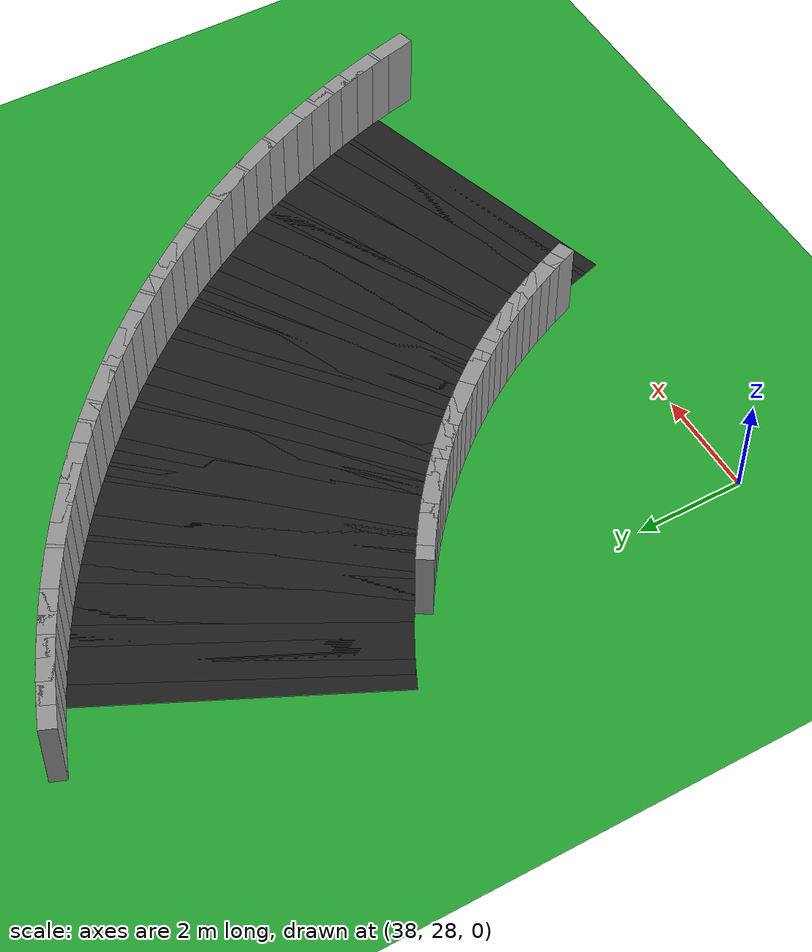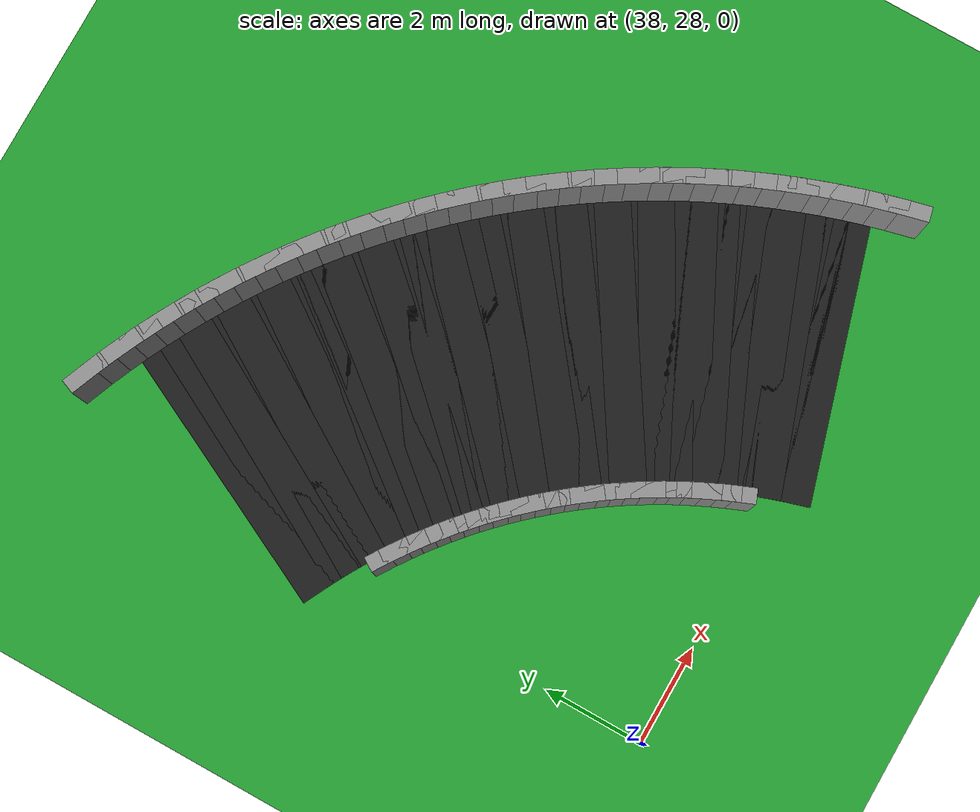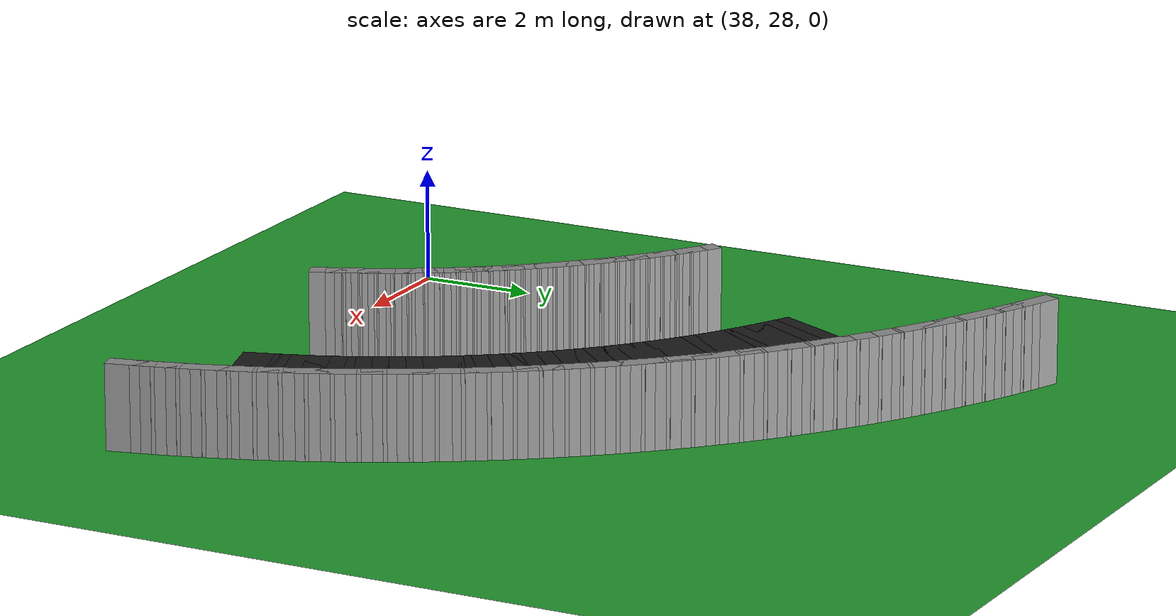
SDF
<sdf version="1.6">
 <world name="loop_speedloop">
  <include><uri>model://sun</uri></include>
  <model name="ground_plane">
   <static>true</static>
   <link name="link">
    <collision name="collision">
     <surface><friction><ode><mu>100</mu><mu2>50</mu2></ode></friction></surface>
     <geometry><plane><normal>0 0 1</normal><size>120 120</size></plane></geometry>
    </collision>
    <visual name="visual">
     <geometry><plane><normal>0 0 1</normal><size>120 120</size></plane></geometry>
     <material>
      <script><uri>file://media/materials/scripts/gazebo.material</uri><name>Gazebo/Green</name></script>
     </material>
    </visual>
   </link>
  </model>
  <model name="curbR_206">
   <static>true</static>
   <pose>48.928 28.467 0.750 0 0 1.80766</pose>
   <link name="link">
    <collision name="collision"><geometry><box><size>0.781 0.300 1.500</size></box></geometry></collision>
    <visual name="visual">
     <geometry><box><size>0.781 0.300 1.500</size></box></geometry>
     <material>
      <script><uri>file://media/materials/scripts/gazebo.material</uri><name>Gazebo/Grey</name></script>
     </material>
    </visual>
   </link>
  </model>
  <model name="curbR_207">
   <static>true</static>
   <pose>48.824 28.875 0.750 0 0 1.83260</pose>
   <link name="link">
    <collision name="collision"><geometry><box><size>0.781 0.300 1.500</size></box></geometry></collision>
    <visual name="visual">
     <geometry><box><size>0.781 0.300 1.500</size></box></geometry>
     <material>
      <script><uri>file://media/materials/scripts/gazebo.material</uri><name>Gazebo/Grey</name></script>
     </material>
    </visual>
   </link>
  </model>
  <model name="asphalt_208">
   <static>true</static>
   <pose>45.929 28.460 0.005 0 0 1.85753</pose>
   <link name="link">
    <visual name="visual">
     <geometry><box><size>0.709 5.500 0.010</size></box></geometry>
     <material>
      <script><uri>file://media/materials/scripts/gazebo.material</uri><name>Gazebo/Black</name></script>
     </material>
    </visual>
   </link>
  </model>
  <model name="curbR_208">
   <static>true</static>
   <pose>48.710 29.281 0.750 0 0 1.85753</pose>
   <link name="link">
    <collision name="collision"><geometry><box><size>0.781 0.300 1.500</size></box></geometry></collision>
    <visual name="visual">
     <geometry><box><size>0.781 0.300 1.500</size></box></geometry>
     <material>
      <script><uri>file://media/materials/scripts/gazebo.material</uri><name>Gazebo/Grey</name></script>
     </material>
    </visual>
   </link>
  </model>
  <model name="asphalt_209">
   <static>true</static>
   <pose>45.826 28.794 0.005 0 0 1.88246</pose>
   <link name="link">
    <visual name="visual">
     <geometry><box><size>0.709 5.500 0.010</size></box></geometry>
     <material>
      <script><uri>file://media/materials/scripts/gazebo.material</uri><name>Gazebo/Black</name></script>
     </material>
    </visual>
   </link>
  </model>
  <model name="curbR_209">
   <static>true</static>
   <pose>48.586 29.683 0.750 0 0 1.88246</pose>
   <link name="link">
    <collision name="collision"><geometry><box><size>0.781 0.300 1.500</size></box></geometry></collision>
    <visual name="visual">
     <geometry><box><size>0.781 0.300 1.500</size></box></geometry>
     <material>
      <script><uri>file://media/materials/scripts/gazebo.material</uri><name>Gazebo/Grey</name></script>
     </material>
    </visual>
   </link>
  </model>
  <model name="asphalt_210">
   <static>true</static>
   <pose>45.714 29.125 0.005 0 0 1.90740</pose>
   <link name="link">
    <visual name="visual">
     <geometry><box><size>0.709 5.500 0.010</size></box></geometry>
     <material>
      <script><uri>file://media/materials/scripts/gazebo.material</uri><name>Gazebo/Black</name></script>
     </material>
    </visual>
   </link>
  </model>
  <model name="curbR_210">
   <static>true</static>
   <pose>48.452 30.083 0.750 0 0 1.90740</pose>
   <link name="link">
    <collision name="collision"><geometry><box><size>0.781 0.300 1.500</size></box></geometry></collision>
    <visual name="visual">
     <geometry><box><size>0.781 0.300 1.500</size></box></geometry>
     <material>
      <script><uri>file://media/materials/scripts/gazebo.material</uri><name>Gazebo/Grey</name></script>
     </material>
    </visual>
   </link>
  </model>
  <model name="asphalt_211">
   <static>true</static>
   <pose>45.595 29.453 0.005 0 0 1.93233</pose>
   <link name="link">
    <visual name="visual">
     <geometry><box><size>0.709 5.500 0.010</size></box></geometry>
     <material>
      <script><uri>file://media/materials/scripts/gazebo.material</uri><name>Gazebo/Black</name></script>
     </material>
    </visual>
   </link>
  </model>
  <model name="curbR_211">
   <static>true</static>
   <pose>48.307 30.478 0.750 0 0 1.93233</pose>
   <link name="link">
    <collision name="collision"><geometry><box><size>0.781 0.300 1.500</size></box></geometry></collision>
    <visual name="visual">
     <geometry><box><size>0.781 0.300 1.500</size></box></geometry>
     <material>
      <script><uri>file://media/materials/scripts/gazebo.material</uri><name>Gazebo/Grey</name></script>
     </material>
    </visual>
   </link>
  </model>
  <model name="asphalt_212">
   <static>true</static>
   <pose>45.468 29.778 0.005 0 0 1.95726</pose>
   <link name="link">
    <visual name="visual">
     <geometry><box><size>0.709 5.500 0.010</size></box></geometry>
     <material>
      <script><uri>file://media/materials/scripts/gazebo.material</uri><name>Gazebo/Black</name></script>
     </material>
    </visual>
   </link>
  </model>
  <model name="curbL_212">
   <static>true</static>
   <pose>42.782 28.685 0.750 0 0 1.95726</pose>
   <link name="link">
    <collision name="collision"><geometry><box><size>0.637 0.300 1.500</size></box></geometry></collision>
    <visual name="visual">
     <geometry><box><size>0.637 0.300 1.500</size></box></geometry>
     <material>
      <script><uri>file://media/materials/scripts/gazebo.material</uri><name>Gazebo/Grey</name></script>
     </material>
    </visual>
   </link>
  </model>
  <model name="curbR_212">
   <static>true</static>
   <pose>48.153 30.871 0.750 0 0 1.95726</pose>
   <link name="link">
    <collision name="collision"><geometry><box><size>0.781 0.300 1.500</size></box></geometry></collision>
    <visual name="visual">
     <geometry><box><size>0.781 0.300 1.500</size></box></geometry>
     <material>
      <script><uri>file://media/materials/scripts/gazebo.material</uri><name>Gazebo/Grey</name></script>
     </material>
    </visual>
   </link>
  </model>
  <model name="asphalt_213">
   <static>true</static>
   <pose>45.332 30.099 0.005 0 0 1.98220</pose>
   <link name="link">
    <visual name="visual">
     <geometry><box><size>0.709 5.500 0.010</size></box></geometry>
     <material>
      <script><uri>file://media/materials/scripts/gazebo.material</uri><name>Gazebo/Black</name></script>
     </material>
    </visual>
   </link>
  </model>
  <model name="curbL_213">
   <static>true</static>
   <pose>42.674 28.940 0.750 0 0 1.98220</pose>
   <link name="link">
    <collision name="collision"><geometry><box><size>0.637 0.300 1.500</size></box></geometry></collision>
    <visual name="visual">
     <geometry><box><size>0.637 0.300 1.500</size></box></geometry>
     <material>
      <script><uri>file://media/materials/scripts/gazebo.material</uri><name>Gazebo/Grey</name></script>
     </material>
    </visual>
   </link>
  </model>
  <model name="curbR_213">
   <static>true</static>
   <pose>47.990 31.259 0.750 0 0 1.98220</pose>
   <link name="link">
    <collision name="collision"><geometry><box><size>0.781 0.300 1.500</size></box></geometry></collision>
    <visual name="visual">
     <geometry><box><size>0.781 0.300 1.500</size></box></geometry>
     <material>
      <script><uri>file://media/materials/scripts/gazebo.material</uri><name>Gazebo/Grey</name></script>
     </material>
    </visual>
   </link>
  </model>
  <model name="asphalt_214">
   <static>true</static>
   <pose>45.188 30.418 0.005 0 0 2.00713</pose>
   <link name="link">
    <visual name="visual">
     <geometry><box><size>0.709 5.500 0.010</size></box></geometry>
     <material>
      <script><uri>file://media/materials/scripts/gazebo.material</uri><name>Gazebo/Black</name></script>
     </material>
    </visual>
   </link>
  </model>
  <model name="curbL_214">
   <static>true</static>
   <pose>42.560 29.192 0.750 0 0 2.00713</pose>
   <link name="link">
    <collision name="collision"><geometry><box><size>0.637 0.300 1.500</size></box></geometry></collision>
    <visual name="visual">
     <geometry><box><size>0.637 0.300 1.500</size></box></geometry>
     <material>
      <script><uri>file://media/materials/scripts/gazebo.material</uri><name>Gazebo/Grey</name></script>
     </material>
    </visual>
   </link>
  </model>
  <model name="curbR_214">
   <static>true</static>
   <pose>47.817 31.643 0.750 0 0 2.00713</pose>
   <link name="link">
    <collision name="collision"><geometry><box><size>0.781 0.300 1.500</size></box></geometry></collision>
    <visual name="visual">
     <geometry><box><size>0.781 0.300 1.500</size></box></geometry>
     <material>
      <script><uri>file://media/materials/scripts/gazebo.material</uri><name>Gazebo/Grey</name></script>
     </material>
    </visual>
   </link>
  </model>
  <model name="asphalt_215">
   <static>true</static>
   <pose>45.037 30.732 0.005 0 0 2.03206</pose>
   <link name="link">
    <visual name="visual">
     <geometry><box><size>0.709 5.500 0.010</size></box></geometry>
     <material>
      <script><uri>file://media/materials/scripts/gazebo.material</uri><name>Gazebo/Black</name></script>
     </material>
    </visual>
   </link>
  </model>
  <model name="curbL_215">
   <static>true</static>
   <pose>42.440 29.441 0.750 0 0 2.03206</pose>
   <link name="link">
    <collision name="collision"><geometry><box><size>0.637 0.300 1.500</size></box></geometry></collision>
    <visual name="visual">
     <geometry><box><size>0.637 0.300 1.500</size></box></geometry>
     <material>
      <script><uri>file://media/materials/scripts/gazebo.material</uri><name>Gazebo/Grey</name></script>
     </material>
    </visual>
   </link>
  </model>
  <model name="curbR_215">
   <static>true</static>
   <pose>47.634 32.023 0.750 0 0 2.03206</pose>
   <link name="link">
    <collision name="collision"><geometry><box><size>0.781 0.300 1.500</size></box></geometry></collision>
    <visual name="visual">
     <geometry><box><size>0.781 0.300 1.500</size></box></geometry>
     <material>
      <script><uri>file://media/materials/scripts/gazebo.material</uri><name>Gazebo/Grey</name></script>
     </material>
    </visual>
   </link>
  </model>
  <model name="asphalt_216">
   <static>true</static>
   <pose>44.878 31.043 0.005 0 0 2.05700</pose>
   <link name="link">
    <visual name="visual">
     <geometry><box><size>0.709 5.500 0.010</size></box></geometry>
     <material>
      <script><uri>file://media/materials/scripts/gazebo.material</uri><name>Gazebo/Black</name></script>
     </material>
    </visual>
   </link>
  </model>
  <model name="curbL_216">
   <static>true</static>
   <pose>42.314 29.688 0.750 0 0 2.05700</pose>
   <link name="link">
    <collision name="collision"><geometry><box><size>0.637 0.300 1.500</size></box></geometry></collision>
    <visual name="visual">
     <geometry><box><size>0.637 0.300 1.500</size></box></geometry>
     <material>
      <script><uri>file://media/materials/scripts/gazebo.material</uri><name>Gazebo/Grey</name></script>
     </material>
    </visual>
   </link>
  </model>
  <model name="curbR_216">
   <static>true</static>
   <pose>47.442 32.398 0.750 0 0 2.05700</pose>
   <link name="link">
    <collision name="collision"><geometry><box><size>0.781 0.300 1.500</size></box></geometry></collision>
    <visual name="visual">
     <geometry><box><size>0.781 0.300 1.500</size></box></geometry>
     <material>
      <script><uri>file://media/materials/scripts/gazebo.material</uri><name>Gazebo/Grey</name></script>
     </material>
    </visual>
   </link>
  </model>
  <model name="asphalt_217">
   <static>true</static>
   <pose>44.711 31.349 0.005 0 0 2.08193</pose>
   <link name="link">
    <visual name="visual">
     <geometry><box><size>0.709 5.500 0.010</size></box></geometry>
     <material>
      <script><uri>file://media/materials/scripts/gazebo.material</uri><name>Gazebo/Black</name></script>
     </material>
    </visual>
   </link>
  </model>
  <model name="curbL_217">
   <static>true</static>
   <pose>42.182 29.931 0.750 0 0 2.08193</pose>
   <link name="link">
    <collision name="collision"><geometry><box><size>0.637 0.300 1.500</size></box></geometry></collision>
    <visual name="visual">
     <geometry><box><size>0.637 0.300 1.500</size></box></geometry>
     <material>
      <script><uri>file://media/materials/scripts/gazebo.material</uri><name>Gazebo/Grey</name></script>
     </material>
    </visual>
   </link>
  </model>
  <model name="curbR_217">
   <static>true</static>
   <pose>47.240 32.768 0.750 0 0 2.08193</pose>
   <link name="link">
    <collision name="collision"><geometry><box><size>0.781 0.300 1.500</size></box></geometry></collision>
    <visual name="visual">
     <geometry><box><size>0.781 0.300 1.500</size></box></geometry>
     <material>
      <script><uri>file://media/materials/scripts/gazebo.material</uri><name>Gazebo/Grey</name></script>
     </material>
    </visual>
   </link>
  </model>
  <model name="asphalt_218">
   <static>true</static>
   <pose>44.536 31.651 0.005 0 0 2.10686</pose>
   <link name="link">
    <visual name="visual">
     <geometry><box><size>0.709 5.500 0.010</size></box></geometry>
     <material>
      <script><uri>file://media/materials/scripts/gazebo.material</uri><name>Gazebo/Black</name></script>
     </material>
    </visual>
   </link>
  </model>
  <model name="curbL_218">
   <static>true</static>
   <pose>42.043 30.170 0.750 0 0 2.10686</pose>
   <link name="link">
    <collision name="collision"><geometry><box><size>0.637 0.300 1.500</size></box></geometry></collision>
    <visual name="visual">
     <geometry><box><size>0.637 0.300 1.500</size></box></geometry>
     <material>
      <script><uri>file://media/materials/scripts/gazebo.material</uri><name>Gazebo/Grey</name></script>
     </material>
    </visual>
   </link>
  </model>
  <model name="curbR_218">
   <static>true</static>
   <pose>47.029 33.132 0.750 0 0 2.10686</pose>
   <link name="link">
    <collision name="collision"><geometry><box><size>0.781 0.300 1.500</size></box></geometry></collision>
    <visual name="visual">
     <geometry><box><size>0.781 0.300 1.500</size></box></geometry>
     <material>
      <script><uri>file://media/materials/scripts/gazebo.material</uri><name>Gazebo/Grey</name></script>
     </material>
    </visual>
   </link>
  </model>
  <model name="asphalt_219">
   <static>true</static>
   <pose>44.354 31.949 0.005 0 0 2.13180</pose>
   <link name="link">
    <visual name="visual">
     <geometry><box><size>0.709 5.500 0.010</size></box></geometry>
     <material>
      <script><uri>file://media/materials/scripts/gazebo.material</uri><name>Gazebo/Black</name></script>
     </material>
    </visual>
   </link>
  </model>
  <model name="curbL_219">
   <static>true</static>
   <pose>41.899 30.406 0.750 0 0 2.13180</pose>
   <link name="link">
    <collision name="collision"><geometry><box><size>0.637 0.300 1.500</size></box></geometry></collision>
    <visual name="visual">
     <geometry><box><size>0.637 0.300 1.500</size></box></geometry>
     <material>
      <script><uri>file://media/materials/scripts/gazebo.material</uri><name>Gazebo/Grey</name></script>
     </material>
    </visual>
   </link>
  </model>
  <model name="curbR_219">
   <static>true</static>
   <pose>46.810 33.492 0.750 0 0 2.13180</pose>
   <link name="link">
    <collision name="collision"><geometry><box><size>0.781 0.300 1.500</size></box></geometry></collision>
    <visual name="visual">
     <geometry><box><size>0.781 0.300 1.500</size></box></geometry>
     <material>
      <script><uri>file://media/materials/scripts/gazebo.material</uri><name>Gazebo/Grey</name></script>
     </material>
    </visual>
   </link>
  </model>
  <model name="asphalt_220">
   <static>true</static>
   <pose>44.165 32.242 0.005 0 0 2.15673</pose>
   <link name="link">
    <visual name="visual">
     <geometry><box><size>0.709 5.500 0.010</size></box></geometry>
     <material>
      <script><uri>file://media/materials/scripts/gazebo.material</uri><name>Gazebo/Black</name></script>
     </material>
    </visual>
   </link>
  </model>
  <model name="curbL_220">
   <static>true</static>
   <pose>41.749 30.639 0.750 0 0 2.15673</pose>
   <link name="link">
    <collision name="collision"><geometry><box><size>0.637 0.300 1.500</size></box></geometry></collision>
    <visual name="visual">
     <geometry><box><size>0.637 0.300 1.500</size></box></geometry>
     <material>
      <script><uri>file://media/materials/scripts/gazebo.material</uri><name>Gazebo/Grey</name></script>
     </material>
    </visual>
   </link>
  </model>
  <model name="curbR_220">
   <static>true</static>
   <pose>46.581 33.846 0.750 0 0 2.15673</pose>
   <link name="link">
    <collision name="collision"><geometry><box><size>0.781 0.300 1.500</size></box></geometry></collision>
    <visual name="visual">
     <geometry><box><size>0.781 0.300 1.500</size></box></geometry>
     <material>
      <script><uri>file://media/materials/scripts/gazebo.material</uri><name>Gazebo/Grey</name></script>
     </material>
    </visual>
   </link>
  </model>
  <model name="asphalt_221">
   <static>true</static>
   <pose>43.968 32.531 0.005 0 0 2.18166</pose>
   <link name="link">
    <visual name="visual">
     <geometry><box><size>0.709 5.500 0.010</size></box></geometry>
     <material>
      <script><uri>file://media/materials/scripts/gazebo.material</uri><name>Gazebo/Black</name></script>
     </material>
    </visual>
   </link>
  </model>
  <model name="curbL_221">
   <static>true</static>
   <pose>41.593 30.868 0.750 0 0 2.18166</pose>
   <link name="link">
    <collision name="collision"><geometry><box><size>0.637 0.300 1.500</size></box></geometry></collision>
    <visual name="visual">
     <geometry><box><size>0.637 0.300 1.500</size></box></geometry>
     <material>
      <script><uri>file://media/materials/scripts/gazebo.material</uri><name>Gazebo/Grey</name></script>
     </material>
    </visual>
   </link>
  </model>
  <model name="curbR_221">
   <static>true</static>
   <pose>46.344 34.194 0.750 0 0 2.18166</pose>
   <link name="link">
    <collision name="collision"><geometry><box><size>0.781 0.300 1.500</size></box></geometry></collision>
    <visual name="visual">
     <geometry><box><size>0.781 0.300 1.500</size></box></geometry>
     <material>
      <script><uri>file://media/materials/scripts/gazebo.material</uri><name>Gazebo/Grey</name></script>
     </material>
    </visual>
   </link>
  </model>
  <model name="asphalt_222">
   <static>true</static>
   <pose>43.765 32.814 0.005 0 0 2.20659</pose>
   <link name="link">
    <visual name="visual">
     <geometry><box><size>0.709 5.500 0.010</size></box></geometry>
     <material>
      <script><uri>file://media/materials/scripts/gazebo.material</uri><name>Gazebo/Black</name></script>
     </material>
    </visual>
   </link>
  </model>
  <model name="curbL_222">
   <static>true</static>
   <pose>41.431 31.092 0.750 0 0 2.20659</pose>
   <link name="link">
    <collision name="collision"><geometry><box><size>0.637 0.300 1.500</size></box></geometry></collision>
    <visual name="visual">
     <geometry><box><size>0.637 0.300 1.500</size></box></geometry>
     <material>
      <script><uri>file://media/materials/scripts/gazebo.material</uri><name>Gazebo/Grey</name></script>
     </material>
    </visual>
   </link>
  </model>
  <model name="curbR_222">
   <static>true</static>
   <pose>46.098 34.536 0.750 0 0 2.20659</pose>
   <link name="link">
    <collision name="collision"><geometry><box><size>0.781 0.300 1.500</size></box></geometry></collision>
    <visual name="visual">
     <geometry><box><size>0.781 0.300 1.500</size></box></geometry>
     <material>
      <script><uri>file://media/materials/scripts/gazebo.material</uri><name>Gazebo/Grey</name></script>
     </material>
    </visual>
   </link>
  </model>
  <model name="asphalt_223">
   <static>true</static>
   <pose>43.554 33.092 0.005 0 0 2.23153</pose>
   <link name="link">
    <visual name="visual">
     <geometry><box><size>0.709 5.500 0.010</size></box></geometry>
     <material>
      <script><uri>file://media/materials/scripts/gazebo.material</uri><name>Gazebo/Black</name></script>
     </material>
    </visual>
   </link>
  </model>
  <model name="curbL_223">
   <static>true</static>
   <pose>41.264 31.313 0.750 0 0 2.23153</pose>
   <link name="link">
    <collision name="collision"><geometry><box><size>0.637 0.300 1.500</size></box></geometry></collision>
    <visual name="visual">
     <geometry><box><size>0.637 0.300 1.500</size></box></geometry>
     <material>
      <script><uri>file://media/materials/scripts/gazebo.material</uri><name>Gazebo/Grey</name></script>
     </material>
    </visual>
   </link>
  </model>
  <model name="curbR_223">
   <static>true</static>
   <pose>45.843 34.872 0.750 0 0 2.23153</pose>
   <link name="link">
    <collision name="collision"><geometry><box><size>0.781 0.300 1.500</size></box></geometry></collision>
    <visual name="visual">
     <geometry><box><size>0.781 0.300 1.500</size></box></geometry>
     <material>
      <script><uri>file://media/materials/scripts/gazebo.material</uri><name>Gazebo/Grey</name></script>
     </material>
    </visual>
   </link>
  </model>
  <model name="asphalt_224">
   <static>true</static>
   <pose>43.336 33.365 0.005 0 0 2.25646</pose>
   <link name="link">
    <visual name="visual">
     <geometry><box><size>0.709 5.500 0.010</size></box></geometry>
     <material>
      <script><uri>file://media/materials/scripts/gazebo.material</uri><name>Gazebo/Black</name></script>
     </material>
    </visual>
   </link>
  </model>
  <model name="curbL_224">
   <static>true</static>
   <pose>41.092 31.529 0.750 0 0 2.25646</pose>
   <link name="link">
    <collision name="collision"><geometry><box><size>0.637 0.300 1.500</size></box></geometry></collision>
    <visual name="visual">
     <geometry><box><size>0.637 0.300 1.500</size></box></geometry>
     <material>
      <script><uri>file://media/materials/scripts/gazebo.material</uri><name>Gazebo/Grey</name></script>
     </material>
    </visual>
   </link>
  </model>
  <model name="curbR_224">
   <static>true</static>
   <pose>45.581 35.201 0.750 0 0 2.25646</pose>
   <link name="link">
    <collision name="collision"><geometry><box><size>0.781 0.300 1.500</size></box></geometry></collision>
    <visual name="visual">
     <geometry><box><size>0.781 0.300 1.500</size></box></geometry>
     <material>
      <script><uri>file://media/materials/scripts/gazebo.material</uri><name>Gazebo/Grey</name></script>
     </material>
    </visual>
   </link>
  </model>
  <model name="asphalt_225">
   <static>true</static>
   <pose>43.112 33.633 0.005 0 0 2.28139</pose>
   <link name="link">
    <visual name="visual">
     <geometry><box><size>0.709 5.500 0.010</size></box></geometry>
     <material>
      <script><uri>file://media/materials/scripts/gazebo.material</uri><name>Gazebo/Black</name></script>
     </material>
    </visual>
   </link>
  </model>
  <model name="curbL_225">
   <static>true</static>
   <pose>40.914 31.741 0.750 0 0 2.28139</pose>
   <link name="link">
    <collision name="collision"><geometry><box><size>0.637 0.300 1.500</size></box></geometry></collision>
    <visual name="visual">
     <geometry><box><size>0.637 0.300 1.500</size></box></geometry>
     <material>
      <script><uri>file://media/materials/scripts/gazebo.material</uri><name>Gazebo/Grey</name></script>
     </material>
    </visual>
   </link>
  </model>
  <model name="curbR_225">
   <static>true</static>
   <pose>45.310 35.524 0.750 0 0 2.28139</pose>
   <link name="link">
    <collision name="collision"><geometry><box><size>0.781 0.300 1.500</size></box></geometry></collision>
    <visual name="visual">
     <geometry><box><size>0.781 0.300 1.500</size></box></geometry>
     <material>
      <script><uri>file://media/materials/scripts/gazebo.material</uri><name>Gazebo/Grey</name></script>
     </material>
    </visual>
   </link>
  </model>
  <model name="asphalt_226">
   <static>true</static>
   <pose>42.881 33.894 0.005 0 0 2.30633</pose>
   <link name="link">
    <visual name="visual">
     <geometry><box><size>0.709 5.500 0.010</size></box></geometry>
     <material>
      <script><uri>file://media/materials/scripts/gazebo.material</uri><name>Gazebo/Black</name></script>
     </material>
    </visual>
   </link>
  </model>
  <model name="curbL_226">
   <static>true</static>
   <pose>40.731 31.949 0.750 0 0 2.30633</pose>
   <link name="link">
    <collision name="collision"><geometry><box><size>0.637 0.300 1.500</size></box></geometry></collision>
    <visual name="visual">
     <geometry><box><size>0.637 0.300 1.500</size></box></geometry>
     <material>
      <script><uri>file://media/materials/scripts/gazebo.material</uri><name>Gazebo/Grey</name></script>
     </material>
    </visual>
   </link>
  </model>
  <model name="curbR_226">
   <static>true</static>
   <pose>45.031 35.840 0.750 0 0 2.30633</pose>
   <link name="link">
    <collision name="collision"><geometry><box><size>0.781 0.300 1.500</size></box></geometry></collision>
    <visual name="visual">
     <geometry><box><size>0.781 0.300 1.500</size></box></geometry>
     <material>
      <script><uri>file://media/materials/scripts/gazebo.material</uri><name>Gazebo/Grey</name></script>
     </material>
    </visual>
   </link>
  </model>
  <model name="asphalt_227">
   <static>true</static>
   <pose>42.643 34.150 0.005 0 0 2.33126</pose>
   <link name="link">
    <visual name="visual">
     <geometry><box><size>0.709 5.500 0.010</size></box></geometry>
     <material>
      <script><uri>file://media/materials/scripts/gazebo.material</uri><name>Gazebo/Black</name></script>
     </material>
    </visual>
   </link>
  </model>
  <model name="curbL_227">
   <static>true</static>
   <pose>40.543 32.152 0.750 0 0 2.33126</pose>
   <link name="link">
    <collision name="collision"><geometry><box><size>0.637 0.300 1.500</size></box></geometry></collision>
    <visual name="visual">
     <geometry><box><size>0.637 0.300 1.500</size></box></geometry>
     <material>
      <script><uri>file://media/materials/scripts/gazebo.material</uri><name>Gazebo/Grey</name></script>
     </material>
    </visual>
   </link>
  </model>
  <model name="curbR_227">
   <static>true</static>
   <pose>44.744 36.149 0.750 0 0 2.33126</pose>
   <link name="link">
    <collision name="collision"><geometry><box><size>0.781 0.300 1.500</size></box></geometry></collision>
    <visual name="visual">
     <geometry><box><size>0.781 0.300 1.500</size></box></geometry>
     <material>
      <script><uri>file://media/materials/scripts/gazebo.material</uri><name>Gazebo/Grey</name></script>
     </material>
    </visual>
   </link>
  </model>
  <model name="asphalt_228">
   <static>true</static>
   <pose>42.400 34.400 0.005 0 0 2.35619</pose>
   <link name="link">
    <visual name="visual">
     <geometry><box><size>0.709 5.500 0.010</size></box></geometry>
     <material>
      <script><uri>file://media/materials/scripts/gazebo.material</uri><name>Gazebo/Black</name></script>
     </material>
    </visual>
   </link>
  </model>
  <model name="curbL_228">
   <static>true</static>
   <pose>40.349 32.350 0.750 0 0 2.35619</pose>
   <link name="link">
    <collision name="collision"><geometry><box><size>0.637 0.300 1.500</size></box></geometry></collision>
    <visual name="visual">
     <geometry><box><size>0.637 0.300 1.500</size></box></geometry>
     <material>
      <script><uri>file://media/materials/scripts/gazebo.material</uri><name>Gazebo/Grey</name></script>
     </material>
    </visual>
   </link>
  </model>
  <model name="curbR_228">
   <static>true</static>
   <pose>44.450 36.451 0.750 0 0 2.35619</pose>
   <link name="link">
    <collision name="collision"><geometry><box><size>0.781 0.300 1.500</size></box></geometry></collision>
    <visual name="visual">
     <geometry><box><size>0.781 0.300 1.500</size></box></geometry>
     <material>
      <script><uri>file://media/materials/scripts/gazebo.material</uri><name>Gazebo/Grey</name></script>
     </material>
    </visual>
   </link>
  </model>
  <model name="asphalt_229">
   <static>true</static>
   <pose>42.150 34.644 0.005 0 0 2.38113</pose>
   <link name="link">
    <visual name="visual">
     <geometry><box><size>0.709 5.500 0.010</size></box></geometry>
     <material>
      <script><uri>file://media/materials/scripts/gazebo.material</uri><name>Gazebo/Black</name></script>
     </material>
    </visual>
   </link>
  </model>
  <model name="curbL_229">
   <static>true</static>
   <pose>40.151 32.543 0.750 0 0 2.38113</pose>
   <link name="link">
    <collision name="collision"><geometry><box><size>0.637 0.300 1.500</size></box></geometry></collision>
    <visual name="visual">
     <geometry><box><size>0.637 0.300 1.500</size></box></geometry>
     <material>
      <script><uri>file://media/materials/scripts/gazebo.material</uri><name>Gazebo/Grey</name></script>
     </material>
    </visual>
   </link>
  </model>
  <model name="curbR_229">
   <static>true</static>
   <pose>44.149 36.745 0.750 0 0 2.38113</pose>
   <link name="link">
    <collision name="collision"><geometry><box><size>0.781 0.300 1.500</size></box></geometry></collision>
    <visual name="visual">
     <geometry><box><size>0.781 0.300 1.500</size></box></geometry>
     <material>
      <script><uri>file://media/materials/scripts/gazebo.material</uri><name>Gazebo/Grey</name></script>
     </material>
    </visual>
   </link>
  </model>
  <model name="asphalt_230">
   <static>true</static>
   <pose>41.894 34.881 0.005 0 0 2.40606</pose>
   <link name="link">
    <visual name="visual">
     <geometry><box><size>0.709 5.500 0.010</size></box></geometry>
     <material>
      <script><uri>file://media/materials/scripts/gazebo.material</uri><name>Gazebo/Black</name></script>
     </material>
    </visual>
   </link>
  </model>
  <model name="curbL_230">
   <static>true</static>
   <pose>39.948 32.731 0.750 0 0 2.40606</pose>
   <link name="link">
    <collision name="collision"><geometry><box><size>0.637 0.300 1.500</size></box></geometry></collision>
    <visual name="visual">
     <geometry><box><size>0.637 0.300 1.500</size></box></geometry>
     <material>
      <script><uri>file://media/materials/scripts/gazebo.material</uri><name>Gazebo/Grey</name></script>
     </material>
    </visual>
   </link>
  </model>
  <model name="curbR_230">
   <static>true</static>
   <pose>43.840 37.031 0.750 0 0 2.40606</pose>
   <link name="link">
    <collision name="collision"><geometry><box><size>0.781 0.300 1.500</size></box></geometry></collision>
    <visual name="visual">
     <geometry><box><size>0.781 0.300 1.500</size></box></geometry>
     <material>
      <script><uri>file://media/materials/scripts/gazebo.material</uri><name>Gazebo/Grey</name></script>
     </material>
    </visual>
   </link>
  </model>
  <model name="asphalt_231">
   <static>true</static>
   <pose>41.632 35.112 0.005 0 0 2.43099</pose>
   <link name="link">
    <visual name="visual">
     <geometry><box><size>0.709 5.500 0.010</size></box></geometry>
     <material>
      <script><uri>file://media/materials/scripts/gazebo.material</uri><name>Gazebo/Black</name></script>
     </material>
    </visual>
   </link>
  </model>
  <model name="curbL_231">
   <static>true</static>
   <pose>39.741 32.914 0.750 0 0 2.43099</pose>
   <link name="link">
    <collision name="collision"><geometry><box><size>0.637 0.300 1.500</size></box></geometry></collision>
    <visual name="visual">
     <geometry><box><size>0.637 0.300 1.500</size></box></geometry>
     <material>
      <script><uri>file://media/materials/scripts/gazebo.material</uri><name>Gazebo/Grey</name></script>
     </material>
    </visual>
   </link>
  </model>
  <model name="curbR_231">
   <static>true</static>
   <pose>43.524 37.310 0.750 0 0 2.43099</pose>
   <link name="link">
    <collision name="collision"><geometry><box><size>0.781 0.300 1.500</size></box></geometry></collision>
    <visual name="visual">
     <geometry><box><size>0.781 0.300 1.500</size></box></geometry>
     <material>
      <script><uri>file://media/materials/scripts/gazebo.material</uri><name>Gazebo/Grey</name></script>
     </material>
    </visual>
   </link>
  </model>
  <model name="asphalt_232">
   <static>true</static>
   <pose>41.365 35.337 0.005 0 0 2.45593</pose>
   <link name="link">
    <visual name="visual">
     <geometry><box><size>0.709 5.500 0.010</size></box></geometry>
     <material>
      <script><uri>file://media/materials/scripts/gazebo.material</uri><name>Gazebo/Black</name></script>
     </material>
    </visual>
   </link>
  </model>
  <model name="curbL_232">
   <static>true</static>
   <pose>39.529 33.092 0.750 0 0 2.45593</pose>
   <link name="link">
    <collision name="collision"><geometry><box><size>0.637 0.300 1.500</size></box></geometry></collision>
    <visual name="visual">
     <geometry><box><size>0.637 0.300 1.500</size></box></geometry>
     <material>
      <script><uri>file://media/materials/scripts/gazebo.material</uri><name>Gazebo/Grey</name></script>
     </material>
    </visual>
   </link>
  </model>
  <model name="curbR_232">
   <static>true</static>
   <pose>43.201 37.581 0.750 0 0 2.45593</pose>
   <link name="link">
    <collision name="collision"><geometry><box><size>0.781 0.300 1.500</size></box></geometry></collision>
    <visual name="visual">
     <geometry><box><size>0.781 0.300 1.500</size></box></geometry>
     <material>
      <script><uri>file://media/materials/scripts/gazebo.material</uri><name>Gazebo/Grey</name></script>
     </material>
    </visual>
   </link>
  </model>
  <model name="asphalt_233">
   <static>true</static>
   <pose>41.092 35.554 0.005 0 0 2.48086</pose>
   <link name="link">
    <visual name="visual">
     <geometry><box><size>0.709 5.500 0.010</size></box></geometry>
     <material>
      <script><uri>file://media/materials/scripts/gazebo.material</uri><name>Gazebo/Black</name></script>
     </material>
    </visual>
   </link>
  </model>
  <model name="curbL_233">
   <static>true</static>
   <pose>39.312 33.265 0.750 0 0 2.48086</pose>
   <link name="link">
    <collision name="collision"><geometry><box><size>0.637 0.300 1.500</size></box></geometry></collision>
    <visual name="visual">
     <geometry><box><size>0.637 0.300 1.500</size></box></geometry>
     <material>
      <script><uri>file://media/materials/scripts/gazebo.material</uri><name>Gazebo/Grey</name></script>
     </material>
    </visual>
   </link>
  </model>
  <model name="curbR_233">
   <static>true</static>
   <pose>42.872 37.844 0.750 0 0 2.48086</pose>
   <link name="link">
    <collision name="collision"><geometry><box><size>0.781 0.300 1.500</size></box></geometry></collision>
    <visual name="visual">
     <geometry><box><size>0.781 0.300 1.500</size></box></geometry>
     <material>
      <script><uri>file://media/materials/scripts/gazebo.material</uri><name>Gazebo/Grey</name></script>
     </material>
    </visual>
   </link>
  </model>
  <model name="asphalt_234">
   <static>true</static>
   <pose>40.814 35.765 0.005 0 0 2.50579</pose>
   <link name="link">
    <visual name="visual">
     <geometry><box><size>0.709 5.500 0.010</size></box></geometry>
     <material>
      <script><uri>file://media/materials/scripts/gazebo.material</uri><name>Gazebo/Black</name></script>
     </material>
    </visual>
   </link>
  </model>
  <model name="curbL_234">
   <static>true</static>
   <pose>39.092 33.432 0.750 0 0 2.50579</pose>
   <link name="link">
    <collision name="collision"><geometry><box><size>0.637 0.300 1.500</size></box></geometry></collision>
    <visual name="visual">
     <geometry><box><size>0.637 0.300 1.500</size></box></geometry>
     <material>
      <script><uri>file://media/materials/scripts/gazebo.material</uri><name>Gazebo/Grey</name></script>
     </material>
    </visual>
   </link>
  </model>
  <model name="curbR_234">
   <static>true</static>
   <pose>42.536 38.098 0.750 0 0 2.50579</pose>
   <link name="link">
    <collision name="collision"><geometry><box><size>0.781 0.300 1.500</size></box></geometry></collision>
    <visual name="visual">
     <geometry><box><size>0.781 0.300 1.500</size></box></geometry>
     <material>
      <script><uri>file://media/materials/scripts/gazebo.material</uri><name>Gazebo/Grey</name></script>
     </material>
    </visual>
   </link>
  </model>
  <model name="asphalt_235">
   <static>true</static>
   <pose>40.530 35.969 0.005 0 0 2.53073</pose>
   <link name="link">
    <visual name="visual">
     <geometry><box><size>0.709 5.500 0.010</size></box></geometry>
     <material>
      <script><uri>file://media/materials/scripts/gazebo.material</uri><name>Gazebo/Black</name></script>
     </material>
    </visual>
   </link>
  </model>
  <model name="curbL_235">
   <static>true</static>
   <pose>38.867 33.593 0.750 0 0 2.53073</pose>
   <link name="link">
    <collision name="collision"><geometry><box><size>0.637 0.300 1.500</size></box></geometry></collision>
    <visual name="visual">
     <geometry><box><size>0.637 0.300 1.500</size></box></geometry>
     <material>
      <script><uri>file://media/materials/scripts/gazebo.material</uri><name>Gazebo/Grey</name></script>
     </material>
    </visual>
   </link>
  </model>
  <model name="curbR_235">
   <static>true</static>
   <pose>42.194 38.344 0.750 0 0 2.53073</pose>
   <link name="link">
    <collision name="collision"><geometry><box><size>0.781 0.300 1.500</size></box></geometry></collision>
    <visual name="visual">
     <geometry><box><size>0.781 0.300 1.500</size></box></geometry>
     <material>
      <script><uri>file://media/materials/scripts/gazebo.material</uri><name>Gazebo/Grey</name></script>
     </material>
    </visual>
   </link>
  </model>
  <model name="asphalt_236">
   <static>true</static>
   <pose>40.242 36.165 0.005 0 0 2.55566</pose>
   <link name="link">
    <visual name="visual">
     <geometry><box><size>0.709 5.500 0.010</size></box></geometry>
     <material>
      <script><uri>file://media/materials/scripts/gazebo.material</uri><name>Gazebo/Black</name></script>
     </material>
    </visual>
   </link>
  </model>
  <model name="curbL_236">
   <static>true</static>
   <pose>38.639 33.749 0.750 0 0 2.55566</pose>
   <link name="link">
    <collision name="collision"><geometry><box><size>0.637 0.300 1.500</size></box></geometry></collision>
    <visual name="visual">
     <geometry><box><size>0.637 0.300 1.500</size></box></geometry>
     <material>
      <script><uri>file://media/materials/scripts/gazebo.material</uri><name>Gazebo/Grey</name></script>
     </material>
    </visual>
   </link>
  </model>
  <model name="curbR_236">
   <static>true</static>
   <pose>41.846 38.581 0.750 0 0 2.55566</pose>
   <link name="link">
    <collision name="collision"><geometry><box><size>0.781 0.300 1.500</size></box></geometry></collision>
    <visual name="visual">
     <geometry><box><size>0.781 0.300 1.500</size></box></geometry>
     <material>
      <script><uri>file://media/materials/scripts/gazebo.material</uri><name>Gazebo/Grey</name></script>
     </material>
    </visual>
   </link>
  </model>
  <model name="asphalt_237">
   <static>true</static>
   <pose>39.949 36.355 0.005 0 0 2.58059</pose>
   <link name="link">
    <visual name="visual">
     <geometry><box><size>0.709 5.500 0.010</size></box></geometry>
     <material>
      <script><uri>file://media/materials/scripts/gazebo.material</uri><name>Gazebo/Black</name></script>
     </material>
    </visual>
   </link>
  </model>
  <model name="curbR_237">
   <static>true</static>
   <pose>41.492 38.810 0.750 0 0 2.58059</pose>
   <link name="link">
    <collision name="collision"><geometry><box><size>0.781 0.300 1.500</size></box></geometry></collision>
    <visual name="visual">
     <geometry><box><size>0.781 0.300 1.500</size></box></geometry>
     <material>
      <script><uri>file://media/materials/scripts/gazebo.material</uri><name>Gazebo/Grey</name></script>
     </material>
    </visual>
   </link>
  </model>
  <model name="asphalt_238">
   <static>true</static>
   <pose>39.651 36.537 0.005 0 0 2.60553</pose>
   <link name="link">
    <visual name="visual">
     <geometry><box><size>0.709 5.500 0.010</size></box></geometry>
     <material>
      <script><uri>file://media/materials/scripts/gazebo.material</uri><name>Gazebo/Black</name></script>
     </material>
    </visual>
   </link>
  </model>
  <model name="curbR_238">
   <static>true</static>
   <pose>41.132 39.030 0.750 0 0 2.60553</pose>
   <link name="link">
    <collision name="collision"><geometry><box><size>0.781 0.300 1.500</size></box></geometry></collision>
    <visual name="visual">
     <geometry><box><size>0.781 0.300 1.500</size></box></geometry>
     <material>
      <script><uri>file://media/materials/scripts/gazebo.material</uri><name>Gazebo/Grey</name></script>
     </material>
    </visual>
   </link>
  </model>
  <model name="asphalt_239">
   <static>true</static>
   <pose>39.349 36.711 0.005 0 0 2.63046</pose>
   <link name="link">
    <visual name="visual">
     <geometry><box><size>0.709 5.500 0.010</size></box></geometry>
     <material>
      <script><uri>file://media/materials/scripts/gazebo.material</uri><name>Gazebo/Black</name></script>
     </material>
    </visual>
   </link>
  </model>
  <model name="curbR_239">
   <static>true</static>
   <pose>40.767 39.240 0.750 0 0 2.63046</pose>
   <link name="link">
    <collision name="collision"><geometry><box><size>0.781 0.300 1.500</size></box></geometry></collision>
    <visual name="visual">
     <geometry><box><size>0.781 0.300 1.500</size></box></geometry>
     <material>
      <script><uri>file://media/materials/scripts/gazebo.material</uri><name>Gazebo/Grey</name></script>
     </material>
    </visual>
   </link>
  </model>
  <model name="asphalt_240">
   <static>true</static>
   <pose>39.042 36.878 0.005 0 0 2.65539</pose>
   <link name="link">
    <visual name="visual">
     <geometry><box><size>0.709 5.500 0.010</size></box></geometry>
     <material>
      <script><uri>file://media/materials/scripts/gazebo.material</uri><name>Gazebo/Black</name></script>
     </material>
    </visual>
   </link>
  </model>
  <model name="curbR_240">
   <static>true</static>
   <pose>40.397 39.442 0.750 0 0 2.65539</pose>
   <link name="link">
    <collision name="collision"><geometry><box><size>0.781 0.300 1.500</size></box></geometry></collision>
    <visual name="visual">
     <geometry><box><size>0.781 0.300 1.500</size></box></geometry>
     <material>
      <script><uri>file://media/materials/scripts/gazebo.material</uri><name>Gazebo/Grey</name></script>
     </material>
    </visual>
   </link>
  </model>
  <model name="asphalt_241">
   <static>true</static>
   <pose>38.732 37.037 0.005 0 0 2.68033</pose>
   <link name="link">
    <visual name="visual">
     <geometry><box><size>0.709 5.500 0.010</size></box></geometry>
     <material>
      <script><uri>file://media/materials/scripts/gazebo.material</uri><name>Gazebo/Black</name></script>
     </material>
    </visual>
   </link>
  </model>
  <model name="curbR_241">
   <static>true</static>
   <pose>40.022 39.634 0.750 0 0 2.68033</pose>
   <link name="link">
    <collision name="collision"><geometry><box><size>0.781 0.300 1.500</size></box></geometry></collision>
    <visual name="visual">
     <geometry><box><size>0.781 0.300 1.500</size></box></geometry>
     <material>
      <script><uri>file://media/materials/scripts/gazebo.material</uri><name>Gazebo/Grey</name></script>
     </material>
    </visual>
   </link>
  </model>
  <model name="curbR_242">
   <static>true</static>
   <pose>39.643 39.817 0.750 0 0 2.70526</pose>
   <link name="link">
    <collision name="collision"><geometry><box><size>0.781 0.300 1.500</size></box></geometry></collision>
    <visual name="visual">
     <geometry><box><size>0.781 0.300 1.500</size></box></geometry>
     <material>
      <script><uri>file://media/materials/scripts/gazebo.material</uri><name>Gazebo/Grey</name></script>
     </material>
    </visual>
   </link>
  </model>
  <model name="curbR_243">
   <static>true</static>
   <pose>39.259 39.990 0.750 0 0 2.73019</pose>
   <link name="link">
    <collision name="collision"><geometry><box><size>0.781 0.300 1.500</size></box></geometry></collision>
    <visual name="visual">
     <geometry><box><size>0.781 0.300 1.500</size></box></geometry>
     <material>
      <script><uri>file://media/materials/scripts/gazebo.material</uri><name>Gazebo/Grey</name></script>
     </material>
    </visual>
   </link>
  </model>
  <model name="curbR_244">
   <static>true</static>
   <pose>38.870 40.154 0.750 0 0 2.75513</pose>
   <link name="link">
    <collision name="collision"><geometry><box><size>0.781 0.300 1.500</size></box></geometry></collision>
    <visual name="visual">
     <geometry><box><size>0.781 0.300 1.500</size></box></geometry>
     <material>
      <script><uri>file://media/materials/scripts/gazebo.material</uri><name>Gazebo/Grey</name></script>
     </material>
    </visual>
   </link>
  </model>
 </world>
</sdf>
